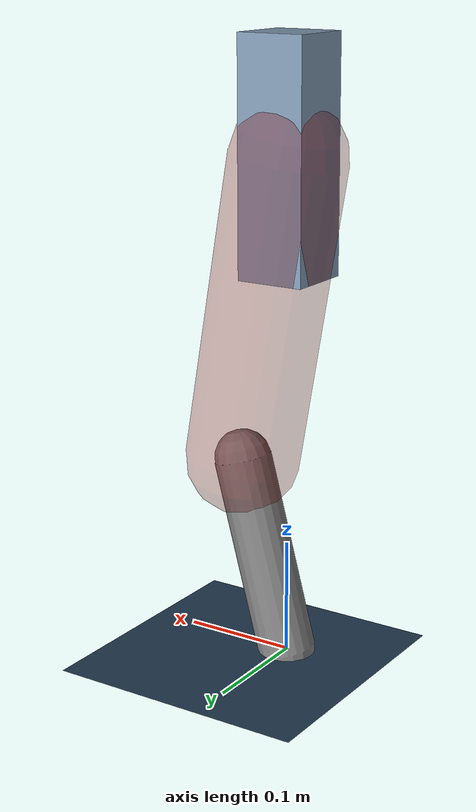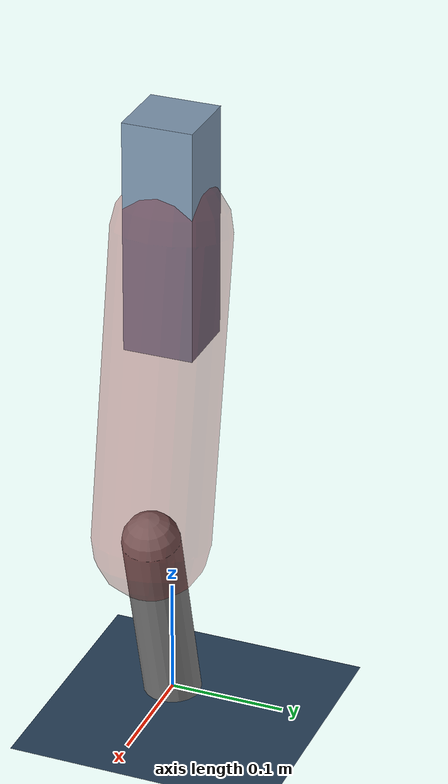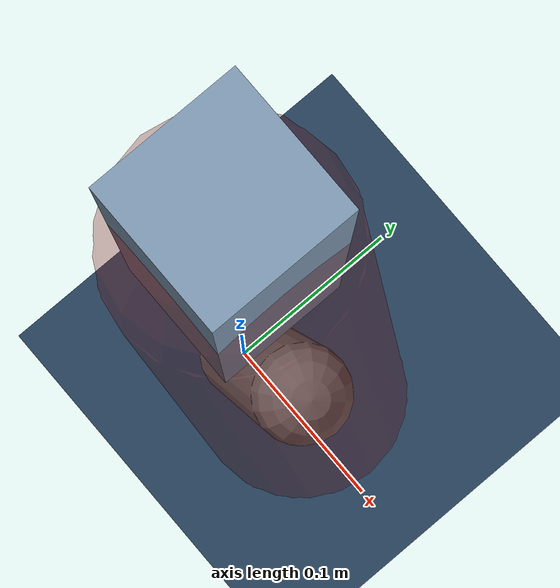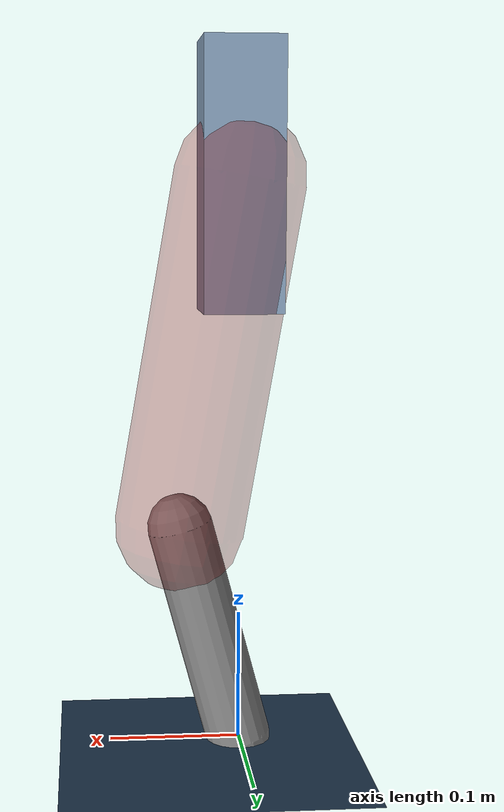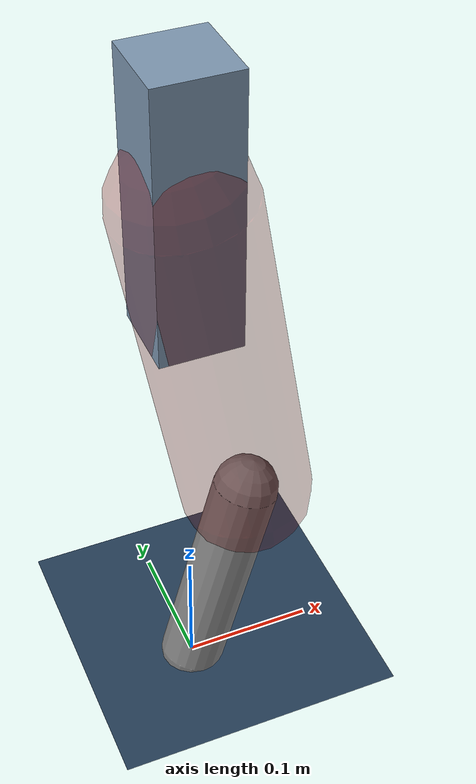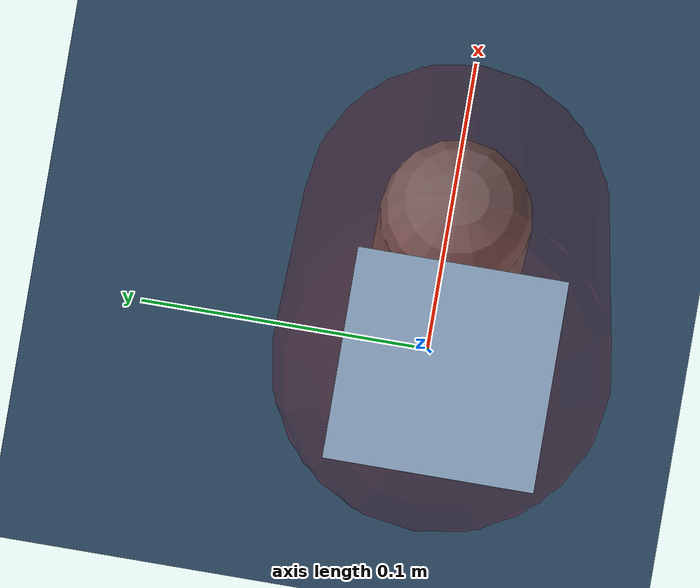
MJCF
<mujoco model="Hopper2D">
	<compiler inertiafromgeom="true" angle="radian" />
	<option timestep="0.001" integrator="implicit" cone="elliptic" solver="Newton" tolerance="1e-10" />

	<default>
		<geom contype="1" conaffinity="1" condim="3" friction="2 0.005 0.0001" solref="0.005 1" />
		<joint limited="true" damping="0.1" />
	</default>

	<asset>
		<texture name="skybox" type="skybox" builtin="gradient" rgb1=".4 .6 .8" rgb2="0 0 0" width="800" height="800" />
		<texture name="grid" type="2d" builtin="checker" rgb1=".1 .2 .3" rgb2=".2 .3 .4" width="300" height="300" mark="edge" markrgb=".2 .3 .4" />
		<material name="ground" texture="grid" texrepeat="1 1" texuniform="true" reflectance="0.1" />
		<material name="leg" rgba="0.5 0.6 0.7 1" />
	</asset>

	<worldbody>

		<geom name="floor" type="plane" size="5 5 0.25" material="ground" />

		<light directional="false" diffuse="0.8 0.8 0.8" specular="0.3 0.3 0.3" pos="0 0 2" dir="0 0 -1" />
		<light mode="targetbodycom" target="base" directional="false" diffuse="0.8 0.8 0.8" specular="0.3 0.3 0.3" pos="0 0 2" dir="0 0 -1" />

		<camera name="fixed" pos="0 -2 1" xyaxes="1 0 0 0 0 1" />
		<camera name="tracking" mode="trackcom" pos="0 -3 1" />

		<body name="root" pos="0 0 0.4341098302906992">
			<joint name="slide_x" type="slide" axis="1 0 0" range="-100 100" />
			<joint name="slide_z" type="slide" axis="0 0 1" range="0 10" />

			<body name="base" pos="0 0 0">
				<geom name="torso" type="box" size="0.03 0.03 0.1" mass="2.676" material="leg" />

				<body name="link1" pos="0 0 0" euler="0 1.399248176332168 0">
					<joint type="hinge" axis="0 -1 0" pos="0 0 0" name="hinge1" limited="true" range="-3.14 3.14" stiffness="0" damping="0.1" />
					<geom name="thigh" type="capsule" fromto="0 0 0 0.26820766474545316 0 0" size="0.05" rgba="0.5 0 0 0.3" mass="0.9039399283381782" />

					<body name="link2" pos="0.26820766474545316 0 0" euler="0 0.4348684202716301 0">
						<joint type="hinge" axis="0 -1 0" pos="0 0 0" name="hinge2" limited="true" range="-3.14 3.14" stiffness="0" damping="0.1" />
						<geom name="shank" type="capsule" fromto="0 0 0 0.17590216554524607 0 0" size="0.025" mass="0.38041194899072145" />

					</body>
				</body>
			</body>
		</body>
	</worldbody>

	<actuator>
		<motor name="torque1" joint="hinge1" ctrlrange="-29.658389976869106 29.658389976869106" ctrllimited="true" gear="1" />
		<motor name="torque2" joint="hinge2" ctrlrange="-75.40307904544528 75.40307904544528" ctrllimited="true" gear="1" />
	</actuator>
</mujoco>
